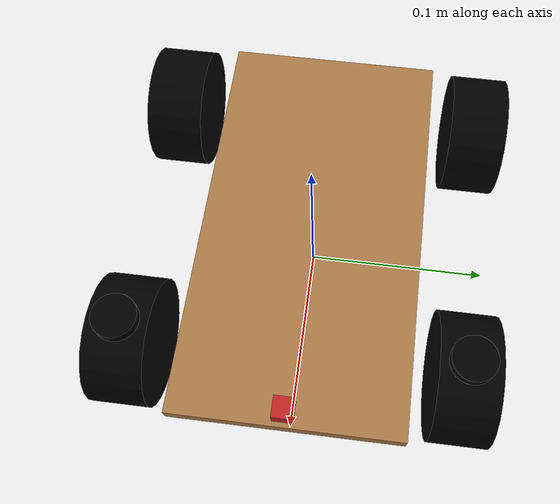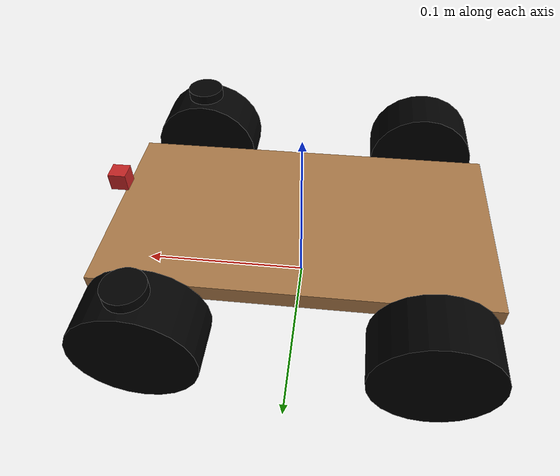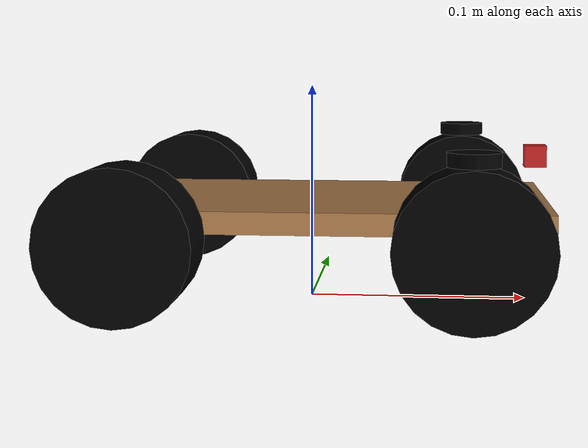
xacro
<?xml version="1.0"?>
<robot name="smartcar" xmlns:xacro="http://www.ros.org/wiki/xacro">

<!-- Include materials-->

<material name="Black">
   <color rgba="0.0 0.0 0.0 1.0"/>
</material>

<material name="White">
   <color rgba="1.0 1.0 1.0 1.0"/>
</material>

<!-- constants -->
<xacro:property name="deg_to_rad" value="0.017453"/>
<xacro:property name="PI" value="3.14"/>
<xacro:property name="degrees_45" value="0.785398163"/>
<xacro:property name="degrees_90" value="1.57079633"/>

<!-- chassis property -->
<xacro:property name="chassis_length" value="0.218"/>
<xacro:property name="chassis_width" value="0.118"/>
<xacro:property name="chassis_height" value="0.01"/>
<xacro:property name="chassis_mass" value="0.788"/>

<!-- wheel property -->
<xacro:property name="wheel_radius" value="0.033"/>
<xacro:property name="wheel_width" value="0.03"/>
<xacro:property name="wheel_height" value="0.11"/>
<xacro:property name="wheel_mass" value=".2"/>
<xacro:property name="wheelbase" value="0.145"/>

<!-- //////////////////     innertia      //////////////////////////-->
<xacro:macro name="cylinder_inertia" params ="m r h">
  <inertial>
   <mass value="${m}"/>
   <inertia ixx="${m*(3*r*r+h*h)/12}"  ixy="0.0" ixz="0.0"
            iyy="${m*(3*r*r+h*h)/12}"  iyz= "0.0"
            izz="${m*r*r/2}"/>
   </inertial>
</xacro:macro>

  <!-- Null inertial element. This is needed to make the model work with
       Gazebo. -->
  <xacro:macro name="null_inertial">
    <inertial>
      <mass value="0.001"/>
      <inertia ixx="0.001" ixy="0" ixz="0" iyy="0.001" iyz="0" izz="0.001"/>
    </inertial>
  </xacro:macro>

<!-- Inertia of a solid cuboid. Width is measured along the x axis, depth
       along the y axis, and height along the z axis. -->
  <xacro:macro name="solid_cuboid_inertial"
               params="width depth height mass *origin">
    <inertial>
      <xacro:insert_block name="origin"/>
      <mass value="${mass}"/>
      <inertia ixx="${mass * (depth * depth + height * height) / 12}"
               ixy="0" ixz="0"
               iyy="${mass * (width * width + height * height) / 12}"
               iyz="0"
               izz="${mass * (width * width + depth * depth) / 12}"/>
    </inertial>
  </xacro:macro>

  <xacro:macro name="thick_walled_tube_inertial"
               params="inner_rad outer_rad height mass">
    <inertial>
      <mass value="${mass}"/>
      <inertia ixx="${(1 / 12) * mass * (3 * (inner_rad * inner_rad +
                    outer_rad * outer_rad) + height * height)}"
               ixy="0" ixz="0"
               iyy="${(1 / 12) * mass * (3 * (inner_rad * inner_rad +
                    outer_rad * outer_rad) + height * height)}"
               iyz="0"
               izz="${mass * (inner_rad * inner_rad +
                    outer_rad * outer_rad) / 2}"/>
    </inertial>
  </xacro:macro>

<!-- /////////////////////     Chassis     ///////////////////////-->

  <!-- Chassis -->
  <link name="chassis">
    <visual>
      <origin xyz="0 0 ${wheel_radius + 0.01}"/>
      <geometry>
        <box size="${chassis_length} ${chassis_width} ${chassis_height}"/>
      </geometry>
    </visual>

    <collision>
      <origin xyz="0 0 ${wheel_radius + 0.01}"/>
      <geometry>
        <box size="${chassis_length} ${chassis_width} ${chassis_height}"/>
      </geometry>
    </collision>

  </link>
  <gazebo reference="chassis">
    <material>Gazebo/WoodFloor</material>
    <turnGravityOff>false</turnGravityOff>
  </gazebo>

<!-- ///////////////////      Wheels      ///////////////////////   -->

<!-- Rear wheel -->
<xacro:macro name="rear_wheel" params= "prefix suffix X Y Z">

 <link name= "${prefix}_${suffix}_wheel">
    <visual>
     <origin rpy= "${degrees_90} 0 0" xyz= "0 0 0"/>
     <geometry><cylinder length="${wheel_width}" radius= "${wheel_radius}"/></geometry>
     <material name= "Black"/>
    </visual>
    <collision>
     <origin rpy= "${degrees_90} 0 0" xyz= "0 0 0"/>
     <geometry><cylinder length="${wheel_width}" radius= "${wheel_radius}"/></geometry>
    </collision>
  <xacro:thick_walled_tube_inertial inner_rad="${wheel_radius/5}" outer_rad="${wheel_radius}"
									height="${wheel_width}" mass="${wheel_mass}"/>
  </link>

  <gazebo reference ="${prefix}_${suffix}_wheel">
     <material>Gazebo/Black</material>
     <turnGravityOff>false</turnGravityOff>
  </gazebo>

<joint name="${prefix}_${suffix}_wheel_joint" type="continuous">
  <parent link= "chassis"/>
  <child link= "${prefix}_${suffix}_wheel"/>
  <origin xyz= "${(wheelbase/2)*X-(wheelbase/2)*Y}
				${(chassis_width/2+wheel_width/2+0.01)*Z}
				${wheel_radius+0.005}"
		  rpy="0 0 0"/>
  <axis xyz="0 1 0"/>
  <limit effort= "100" velocity="100"/>
  <dynamics damping="0.0" friction="0.0"/>
</joint>

 <transmission name="${prefix}_${suffix}_wheel_trans">
      <type>transmission_interface/SimpleTransmission</type>
      <actuator name="${prefix}_${suffix}_wheel_motor">
        <hardwareInterface>EffortJointInterface</hardwareInterface>
        <mechanicalReduction>1</mechanicalReduction>
      </actuator>
      <joint name="${prefix}_${suffix}_wheel_joint">
        <hardwareInterface>VelocityJointInterface</hardwareInterface>
      </joint>
 </transmission>
</xacro:macro>

<!-- Front wheel -->
<xacro:macro name="front_wheel" params= "prefix suffix X Y Z">
  <!-- steering link and joint -->
 <link name= "${prefix}_steering_link">
    <visual>
     <origin rpy= "0 0 0" xyz= "0 0 0"/>
     <geometry><cylinder length="${wheel_width/5}" radius= "${wheel_radius/3}"/></geometry>
     <material name= "Black"/>
    </visual>
    <collision>
     <origin rpy= "0 0 0" xyz= "0 0 0"/>
     <geometry><cylinder length="${wheel_width/5}" radius= "${wheel_radius/3}"/></geometry>
    </collision>
  <xacro:thick_walled_tube_inertial inner_rad="${wheel_radius/5}" outer_rad="${wheel_radius}"
									height="${wheel_width}" mass="${wheel_mass}"/>
  </link>

  <gazebo reference ="${prefix}_steering_link">
     <material>Gazebo/Black</material>
     <turnGravityOff>false</turnGravityOff>
  </gazebo>

    <joint name="${prefix}_steering_joint" type="revolute">
      <parent link="chassis"/>
      <child link="${prefix}_steering_link"/>
      <origin xyz= "${(wheelbase/2)*X-(wheelbase/2)*Y}
			  	  ${(chassis_width/2+wheel_width/2+0.01)*Z}
				  ${wheel_radius*2+0.008}"
		    rpy="0 0 0"/>
      <axis xyz="0 0 1"/>
      <limit lower="${-degrees_45}" upper="${degrees_45}"
			 effort= "100" velocity="100"/>
	  <dynamics damping="0.0" friction="0.0"/>
    </joint>

    <transmission name="${prefix}_steering_trans">
      <type>transmission_interface/SimpleTransmission</type>
      <actuator name="${prefix}_steering_act">
        <hardwareInterface>hardware_interface/EffortJointInterface</hardwareInterface>
        <mechanicalReduction>1</mechanicalReduction>
      </actuator>
      <joint name="${prefix}_steering_joint">
        <hardwareInterface>hardware_interface/EffortJointInterface</hardwareInterface>
      </joint>
    </transmission>

  <!-- wheel link and joint -->
 <link name= "${prefix}_${suffix}_wheel">
    <visual>
     <origin rpy= "${degrees_90} 0 0" xyz= "0 0 0"/>
     <geometry><cylinder length="${wheel_width}" radius= "${wheel_radius}"/></geometry>
     <material name= "Black"/>
    </visual>
    <collision>
     <origin rpy= "${degrees_90} 0 0" xyz= "0 0 0"/>
     <geometry><cylinder length="${wheel_width}" radius= "${wheel_radius}"/></geometry>
    </collision>
  <xacro:thick_walled_tube_inertial inner_rad="${wheel_radius/5}" outer_rad="${wheel_radius}"
									height="${wheel_width}" mass="${wheel_mass}"/>
  </link>

  <gazebo reference ="${prefix}_${suffix}_wheel">
     <material>Gazebo/Black</material>
     <turnGravityOff>false</turnGravityOff>
  </gazebo>

  <joint name="${prefix}_${suffix}_wheel_joint" type="continuous">
    <parent link= "${prefix}_steering_link"/>
    <child link= "${prefix}_${suffix}_wheel"/>
    <origin xyz= "0 0 ${-wheel_radius-0.003}" rpy="0 0 0"/>
    <axis xyz="0 1 0"/>
    <limit effort= "100" velocity="100"/>
    <dynamics damping="0.0" friction="0.0"/>
  </joint>

    <transmission name="${prefix}_${suffix}_wheel_trans">
      <type>transmission_interface/SimpleTransmission</type>
      <actuator name="${prefix}_${suffix}_wheel_motor">
        <hardwareInterface>EffortJointInterface</hardwareInterface>
        <mechanicalReduction>1</mechanicalReduction>
      </actuator>
      <joint name="${prefix}_${suffix}_wheel_joint">
        <hardwareInterface>VelocityJointInterface</hardwareInterface>
      </joint>
    </transmission>
</xacro:macro>

<xacro:front_wheel prefix="right" suffix="front" X="1" Y="0" Z="-1"/>
<xacro:rear_wheel prefix="right" suffix="back" X="0" Y="1" Z="-1"/>
<xacro:front_wheel prefix="left" suffix="front" X="1" Y="0" Z="1"/>
<xacro:rear_wheel prefix="left" suffix="back" X="0" Y="1" Z="1"/>

<!-- Camera -->
  <joint name="chassis_to_camera" type="fixed">
    <parent link="chassis"/>
    <child link="camera_link"/>
    <origin xyz="${(chassis_length / 4)}
                 0
                 ${chassis_height}"
            rpy="0 0 0"/>
  </joint>
  <link name="camera_link">
    <collision>
      <origin xyz="${(chassis_length / 4)-0.005}
		   0
		   ${-chassis_height / 4 +0.06}"
	      rpy="0 0 0"/>
      <geometry>
    <box size="0.01 0.01 0.01"/>
      </geometry>
    </collision>

    <visual>
      <origin xyz="${(chassis_length / 4) -0.005}
		   0
		   ${-chassis_height / 4 +0.06}"
		   rpy="0 0 0"/>
      <geometry>
    <box size="0.01 0.01 0.01"/>
      </geometry>
      <material name="red"/>
    </visual>

    <inertial>
      <mass value="1e-5" />
      <origin xyz="0 0 0" rpy="0 0 0"/>
      <inertia ixx="1e-6" ixy="0" ixz="0" iyy="1e-6" iyz="0" izz="1e-6" />
    </inertial>
  </link>
  <gazebo reference="camera_link">
    <material>Gazebo/Red</material>
  </gazebo>

<!-- ros_control plugin-->

<gazebo>
  <plugin name="gazebo_ros_control" filename= "libgazebo_ros_control.so">
   <robotNamespace>/</robotNamespace>
  </plugin>
</gazebo>

</robot>
